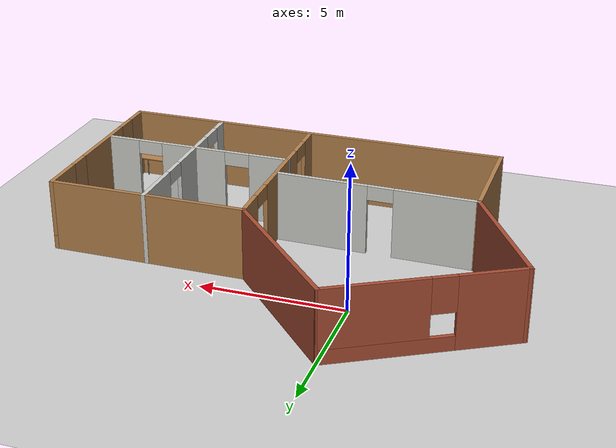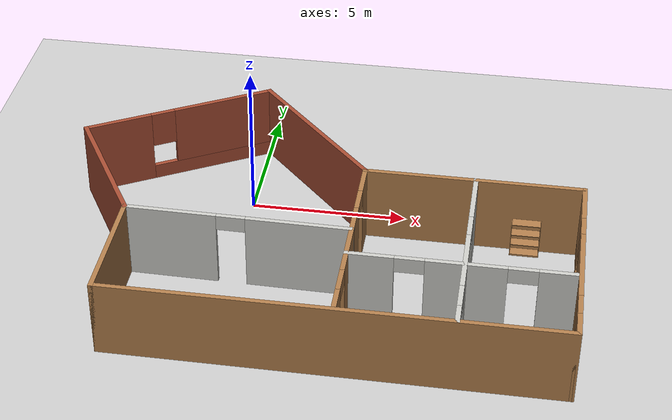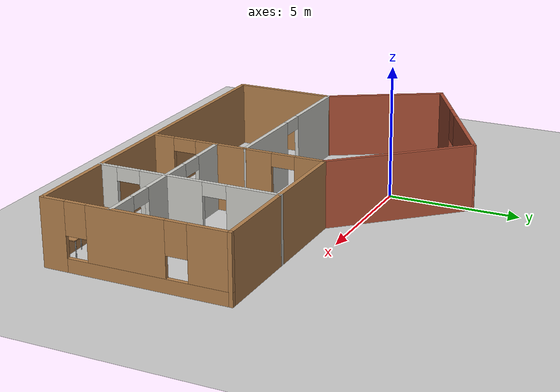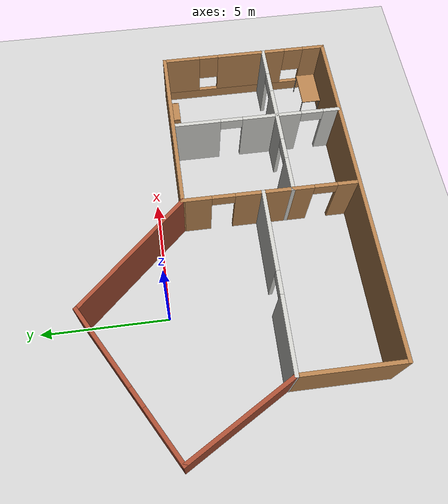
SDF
<sdf version="1.6">
 <world name="default">
  <light name="sun" type="directional">
   <pose>0 0 10 0 -0 0</pose>
   <diffuse>0.8 0.8 0.8 1</diffuse>
   <specular>0.2 0.2 0.2 1</specular>
   <attenuation>
    <range>1000</range>
    <constant>0.9</constant>
    <linear>0.01</linear>
    <quadratic>0.001</quadratic>
   </attenuation>
   <direction>-0.5 0.1 -0.9</direction>
  </light>
  <model name="ground_plane">
   <static>1</static>
   <link name="link">
    <collision name="collision">
     <geometry><plane><normal>0 0 1</normal><size>100 100</size></plane></geometry>
     <surface><friction><ode><mu>100</mu><mu2>50</mu2></ode></friction></surface>
    </collision>
    <visual name="visual">
     <cast_shadows>0</cast_shadows>
     <geometry><plane><normal>0 0 1</normal><size>100 100</size></plane></geometry>
     <material>
      <script><uri>file://media/materials/scripts/gazebo.material</uri><name>Gazebo/Grey</name></script>
     </material>
    </visual>
   </link>
  </model>
  <gravity>0 0 -9.8</gravity>
  <magnetic_field>6e-06 2.3e-05 -4.2e-05</magnetic_field>
  <atmosphere type="adiabatic"/>
  <physics name="default_physics" default="0" type="ode">
   <max_step_size>0.001</max_step_size>
   <real_time_factor>1</real_time_factor>
   <real_time_update_rate>1000</real_time_update_rate>
  </physics>
  <scene><ambient>0.4 0.4 0.4 1</ambient><background>0.7 0.7 0.7 1</background><shadows>1</shadows></scene>
  <spherical_coordinates>
   <surface_model>EARTH_WGS84</surface_model>
   <latitude_deg>0</latitude_deg>
   <longitude_deg>0</longitude_deg>
   <elevation>0</elevation>
   <heading_deg>0</heading_deg>
  </spherical_coordinates>
  <model name="Project4">
   <pose>2.56127 -2.31016 0 0 -0 0</pose>
   <link name="Wall_0">
    <collision name="Wall_0_Collision">
     <geometry><box><size>4 0.15 2.5</size></box></geometry>
     <pose>0 0 1.25 0 -0 0</pose>
    </collision>
    <visual name="Wall_0_Visual">
     <pose>0 0 1.25 0 -0 0</pose>
     <geometry><box><size>4 0.15 2.5</size></box></geometry>
     <material>
      <script><uri>file://media/materials/scripts/gazebo.material</uri><name>Gazebo/Wood</name></script>
      <ambient>1 1 1 1</ambient>
     </material>
     <meta><layer>0</layer></meta>
    </visual>
    <pose>-5.76127 -3.59484 0 0 0 -1.5708</pose>
   </link>
   <link name="Wall_1">
    <collision name="Wall_1_Collision">
     <geometry><box><size>14 0.15 2.5</size></box></geometry>
     <pose>0 0 1.25 0 -0 0</pose>
    </collision>
    <visual name="Wall_1_Visual">
     <pose>0 0 1.25 0 -0 0</pose>
     <geometry><box><size>14 0.15 2.5</size></box></geometry>
     <material>
      <script><uri>file://media/materials/scripts/gazebo.material</uri><name>Gazebo/Wood</name></script>
      <ambient>1 1 1 1</ambient>
     </material>
     <meta><layer>0</layer></meta>
    </visual>
    <pose>1.16373 -5.51984 0 0 -0 0</pose>
   </link>
   <link name="Wall_11">
    <pose>1.23873 -3.56984 0 0 0 -1.5708</pose>
    <visual name="Wall_11_Visual_0">
     <pose>-0.84773 0 1.25 0 -0 0</pose>
     <geometry><box><size>2.05454 0.15 2.5</size></box></geometry>
     <material>
      <script><uri>file://media/materials/scripts/gazebo.material</uri><name>Gazebo/Wood</name></script>
      <ambient>1 1 1 1</ambient>
     </material>
     <meta><layer>0</layer></meta>
    </visual>
    <collision name="Wall_11_Collision_0">
     <geometry><box><size>2.05454 0.15 2.5</size></box></geometry>
     <pose>-0.84773 0 1.25 0 -0 0</pose>
    </collision>
    <visual name="Wall_11_Visual_1">
     <pose>1.47727 0 1.25 0 -0 0</pose>
     <geometry><box><size>0.795459 0.15 2.5</size></box></geometry>
     <material>
      <script><uri>file://media/materials/scripts/gazebo.material</uri><name>Gazebo/Wood</name></script>
      <ambient>1 1 1 1</ambient>
     </material>
     <meta><layer>0</layer></meta>
    </visual>
    <collision name="Wall_11_Collision_1">
     <geometry><box><size>0.795459 0.15 2.5</size></box></geometry>
     <pose>1.47727 0 1.25 0 -0 0</pose>
    </collision>
    <visual name="Wall_11_Visual_2">
     <pose>0.629541 0 2.25 0 -0 0</pose>
     <geometry><box><size>0.9 0.15 0.5</size></box></geometry>
     <material>
      <script><uri>file://media/materials/scripts/gazebo.material</uri><name>Gazebo/Wood</name></script>
      <ambient>1 1 1 1</ambient>
     </material>
     <meta><layer>0</layer></meta>
    </visual>
    <collision name="Wall_11_Collision_2">
     <geometry><box><size>0.9 0.15 0.5</size></box></geometry>
     <pose>0.629541 0 2.25 0 -0 0</pose>
    </collision>
   </link>
   <link name="Wall_13">
    <pose>4.66348 -2.92257 0 0 -0 0</pose>
    <visual name="Wall_13_Visual_0">
     <pose>-2.75649 0 1.25 0 -0 0</pose>
     <geometry><box><size>1.48701 0.15 2.5</size></box></geometry>
     <material>
      <script><uri>file://media/materials/scripts/gazebo.material</uri><name>Gazebo/CeilingTiled</name></script>
      <ambient>1 1 1 1</ambient>
     </material>
     <meta><layer>0</layer></meta>
    </visual>
    <collision name="Wall_13_Collision_0">
     <geometry><box><size>1.48701 0.15 2.5</size></box></geometry>
     <pose>-2.75649 0 1.25 0 -0 0</pose>
    </collision>
    <visual name="Wall_13_Visual_1">
     <pose>0.099527 0 1.25 0 -0 0</pose>
     <geometry><box><size>2.42503 0.15 2.5</size></box></geometry>
     <material>
      <script><uri>file://media/materials/scripts/gazebo.material</uri><name>Gazebo/CeilingTiled</name></script>
      <ambient>1 1 1 1</ambient>
     </material>
     <meta><layer>0</layer></meta>
    </visual>
    <collision name="Wall_13_Collision_1">
     <geometry><box><size>2.42503 0.15 2.5</size></box></geometry>
     <pose>0.099527 0 1.25 0 -0 0</pose>
    </collision>
    <visual name="Wall_13_Visual_2">
     <pose>2.85602 0 1.25 0 -0 0</pose>
     <geometry><box><size>1.28796 0.15 2.5</size></box></geometry>
     <material>
      <script><uri>file://media/materials/scripts/gazebo.material</uri><name>Gazebo/CeilingTiled</name></script>
      <ambient>1 1 1 1</ambient>
     </material>
     <meta><layer>0</layer></meta>
    </visual>
    <collision name="Wall_13_Collision_2">
     <geometry><box><size>1.28796 0.15 2.5</size></box></geometry>
     <pose>2.85602 0 1.25 0 -0 0</pose>
    </collision>
    <visual name="Wall_13_Visual_3">
     <pose>-1.56299 0 2.25 0 -0 0</pose>
     <geometry><box><size>0.9 0.15 0.5</size></box></geometry>
     <material>
      <script><uri>file://media/materials/scripts/gazebo.material</uri><name>Gazebo/CeilingTiled</name></script>
      <ambient>1 1 1 1</ambient>
     </material>
     <meta><layer>0</layer></meta>
    </visual>
    <collision name="Wall_13_Collision_3">
     <geometry><box><size>0.9 0.15 0.5</size></box></geometry>
     <pose>-1.56299 0 2.25 0 -0 0</pose>
    </collision>
    <visual name="Wall_13_Visual_4">
     <pose>1.76204 0 2.25 0 -0 0</pose>
     <geometry><box><size>0.9 0.15 0.5</size></box></geometry>
     <material>
      <script><uri>file://media/materials/scripts/gazebo.material</uri><name>Gazebo/CeilingTiled</name></script>
      <ambient>1 1 1 1</ambient>
     </material>
     <meta><layer>0</layer></meta>
    </visual>
    <collision name="Wall_13_Collision_4">
     <geometry><box><size>0.9 0.15 0.5</size></box></geometry>
     <pose>1.76204 0 2.25 0 -0 0</pose>
    </collision>
   </link>
   <link name="Wall_15">
    <pose>4.7231 -2.09154 0 0 0 -1.5708</pose>
    <visual name="Wall_15_Visual_0">
     <pose>-2.49049 0 1.25 0 -0 0</pose>
     <geometry><box><size>2.01902 0.15 2.5</size></box></geometry>
     <material>
      <script><uri>file://media/materials/scripts/gazebo.material</uri><name>Gazebo/CeilingTiled</name></script>
      <ambient>1 1 1 1</ambient>
     </material>
     <meta><layer>0</layer></meta>
    </visual>
    <collision name="Wall_15_Collision_0">
     <geometry><box><size>2.01902 0.15 2.5</size></box></geometry>
     <pose>-2.49049 0 1.25 0 -0 0</pose>
    </collision>
    <visual name="Wall_15_Visual_1">
     <pose>0.63153 0 1.25 0 -0 0</pose>
     <geometry><box><size>2.42503 0.15 2.5</size></box></geometry>
     <material>
      <script><uri>file://media/materials/scripts/gazebo.material</uri><name>Gazebo/CeilingTiled</name></script>
      <ambient>1 1 1 1</ambient>
     </material>
     <meta><layer>0</layer></meta>
    </visual>
    <collision name="Wall_15_Collision_1">
     <geometry><box><size>2.42503 0.15 2.5</size></box></geometry>
     <pose>0.63153 0 1.25 0 -0 0</pose>
    </collision>
    <visual name="Wall_15_Visual_2">
     <pose>3.12202 0 1.25 0 -0 0</pose>
     <geometry><box><size>0.755957 0.15 2.5</size></box></geometry>
     <material>
      <script><uri>file://media/materials/scripts/gazebo.material</uri><name>Gazebo/CeilingTiled</name></script>
      <ambient>1 1 1 1</ambient>
     </material>
     <meta><layer>0</layer></meta>
    </visual>
    <collision name="Wall_15_Collision_2">
     <geometry><box><size>0.755957 0.15 2.5</size></box></geometry>
     <pose>3.12202 0 1.25 0 -0 0</pose>
    </collision>
    <visual name="Wall_15_Visual_3">
     <pose>-1.03098 0 2.25 0 -0 0</pose>
     <geometry><box><size>0.9 0.15 0.5</size></box></geometry>
     <material>
      <script><uri>file://media/materials/scripts/gazebo.material</uri><name>Gazebo/CeilingTiled</name></script>
      <ambient>1 1 1 1</ambient>
     </material>
     <meta><layer>0</layer></meta>
    </visual>
    <collision name="Wall_15_Collision_3">
     <geometry><box><size>0.9 0.15 0.5</size></box></geometry>
     <pose>-1.03098 0 2.25 0 -0 0</pose>
    </collision>
    <visual name="Wall_15_Visual_4">
     <pose>2.29404 0 2.25 0 -0 0</pose>
     <geometry><box><size>0.9 0.15 0.5</size></box></geometry>
     <material>
      <script><uri>file://media/materials/scripts/gazebo.material</uri><name>Gazebo/CeilingTiled</name></script>
      <ambient>1 1 1 1</ambient>
     </material>
     <meta><layer>0</layer></meta>
    </visual>
    <collision name="Wall_15_Collision_4">
     <geometry><box><size>0.9 0.15 0.5</size></box></geometry>
     <pose>2.29404 0 2.25 0 -0 0</pose>
    </collision>
   </link>
   <link name="Wall_2">
    <pose>8.08873 -2.09484 0 0 -0 1.5708</pose>
    <visual name="Wall_2_Visual_0">
     <pose>-3.02887 0 1.25 0 -0 0</pose>
     <geometry><box><size>0.942258 0.15 2.5</size></box></geometry>
     <material>
      <script><uri>file://media/materials/scripts/gazebo.material</uri><name>Gazebo/Wood</name></script>
      <ambient>1 1 1 1</ambient>
     </material>
     <meta><layer>0</layer></meta>
    </visual>
    <collision name="Wall_2_Collision_0">
     <geometry><box><size>0.942258 0.15 2.5</size></box></geometry>
     <pose>-3.02887 0 1.25 0 -0 0</pose>
    </collision>
    <visual name="Wall_2_Visual_1">
     <pose>0.471129 0 0.25 0 -0 0</pose>
     <geometry><box><size>6.05774 0.15 0.5</size></box></geometry>
     <material>
      <script><uri>file://media/materials/scripts/gazebo.material</uri><name>Gazebo/Wood</name></script>
      <ambient>1 1 1 1</ambient>
     </material>
     <meta><layer>0</layer></meta>
    </visual>
    <collision name="Wall_2_Collision_1">
     <geometry><box><size>6.05774 0.15 0.5</size></box></geometry>
     <pose>0.471129 0 0.25 0 -0 0</pose>
    </collision>
    <visual name="Wall_2_Visual_2">
     <pose>-0.309028 0 1.5 0 -0 0</pose>
     <geometry><box><size>2.89743 0.15 2</size></box></geometry>
     <material>
      <script><uri>file://media/materials/scripts/gazebo.material</uri><name>Gazebo/Wood</name></script>
      <ambient>1 1 1 1</ambient>
     </material>
     <meta><layer>0</layer></meta>
    </visual>
    <collision name="Wall_2_Collision_2">
     <geometry><box><size>2.89743 0.15 2</size></box></geometry>
     <pose>-0.309028 0 1.5 0 -0 0</pose>
    </collision>
    <visual name="Wall_2_Visual_3">
     <pose>2.71984 0 1.5 0 -0 0</pose>
     <geometry><box><size>1.56031 0.15 2</size></box></geometry>
     <material>
      <script><uri>file://media/materials/scripts/gazebo.material</uri><name>Gazebo/Wood</name></script>
      <ambient>1 1 1 1</ambient>
     </material>
     <meta><layer>0</layer></meta>
    </visual>
    <collision name="Wall_2_Collision_3">
     <geometry><box><size>1.56031 0.15 2</size></box></geometry>
     <pose>2.71984 0 1.5 0 -0 0</pose>
    </collision>
    <visual name="Wall_2_Visual_4">
     <pose>-2.15774 0 1.9 0 -0 0</pose>
     <geometry><box><size>0.8 0.15 1.2</size></box></geometry>
     <material>
      <script><uri>file://media/materials/scripts/gazebo.material</uri><name>Gazebo/Wood</name></script>
      <ambient>1 1 1 1</ambient>
     </material>
     <meta><layer>0</layer></meta>
    </visual>
    <collision name="Wall_2_Collision_4">
     <geometry><box><size>0.8 0.15 1.2</size></box></geometry>
     <pose>-2.15774 0 1.9 0 -0 0</pose>
    </collision>
    <visual name="Wall_2_Visual_5">
     <pose>1.53969 0 1.9 0 -0 0</pose>
     <geometry><box><size>0.8 0.15 1.2</size></box></geometry>
     <material>
      <script><uri>file://media/materials/scripts/gazebo.material</uri><name>Gazebo/Wood</name></script>
      <ambient>1 1 1 1</ambient>
     </material>
     <meta><layer>0</layer></meta>
    </visual>
    <collision name="Wall_2_Collision_5">
     <geometry><box><size>0.8 0.15 1.2</size></box></geometry>
     <pose>1.53969 0 1.9 0 -0 0</pose>
    </collision>
   </link>
   <link name="Wall_3">
    <collision name="Wall_3_Collision">
     <geometry><box><size>7 0.15 2.5</size></box></geometry>
     <pose>0 0 1.25 0 -0 0</pose>
    </collision>
    <visual name="Wall_3_Visual">
     <pose>0 0 1.25 0 -0 0</pose>
     <geometry><box><size>7 0.15 2.5</size></box></geometry>
     <material>
      <script><uri>file://media/materials/scripts/gazebo.material</uri><name>Gazebo/Wood</name></script>
      <ambient>1 1 1 1</ambient>
     </material>
     <meta><layer>0</layer></meta>
    </visual>
    <pose>4.66373 1.33016 0 0 -0 3.14159</pose>
   </link>
   <link name="Wall_4">
    <pose>1.23873 -0.219838 0 0 0 -1.5708</pose>
    <visual name="Wall_4_Visual_0">
     <pose>-1.02944 0 1.25 0 -0 0</pose>
     <geometry><box><size>1.19111 0.15 2.5</size></box></geometry>
     <material>
      <script><uri>file://media/materials/scripts/gazebo.material</uri><name>Gazebo/Wood</name></script>
      <ambient>1 1 1 1</ambient>
     </material>
     <meta><layer>0</layer></meta>
    </visual>
    <collision name="Wall_4_Collision_0">
     <geometry><box><size>1.19111 0.15 2.5</size></box></geometry>
     <pose>-1.02944 0 1.25 0 -0 0</pose>
    </collision>
    <visual name="Wall_4_Visual_1">
     <pose>1.04556 0 1.25 0 -0 0</pose>
     <geometry><box><size>1.15889 0.15 2.5</size></box></geometry>
     <material>
      <script><uri>file://media/materials/scripts/gazebo.material</uri><name>Gazebo/Wood</name></script>
      <ambient>1 1 1 1</ambient>
     </material>
     <meta><layer>0</layer></meta>
    </visual>
    <collision name="Wall_4_Collision_1">
     <geometry><box><size>1.15889 0.15 2.5</size></box></geometry>
     <pose>1.04556 0 1.25 0 -0 0</pose>
    </collision>
    <visual name="Wall_4_Visual_2">
     <pose>0.016112 0 2.25 0 -0 0</pose>
     <geometry><box><size>0.9 0.15 0.5</size></box></geometry>
     <material>
      <script><uri>file://media/materials/scripts/gazebo.material</uri><name>Gazebo/Wood</name></script>
      <ambient>1 1 1 1</ambient>
     </material>
     <meta><layer>0</layer></meta>
    </visual>
    <collision name="Wall_4_Collision_2">
     <geometry><box><size>0.9 0.15 0.5</size></box></geometry>
     <pose>0.016112 0 2.25 0 -0 0</pose>
    </collision>
   </link>
   <link name="Wall_5">
    <pose>-2.26127 -1.71984 0 0 -0 3.12731</pose>
    <visual name="Wall_5_Visual_0">
     <pose>-1.9137 0 1.25 0 -0 0</pose>
     <geometry><box><size>3.32331 0.15 2.5</size></box></geometry>
     <material>
      <script><uri>file://media/materials/scripts/gazebo.material</uri><name>Gazebo/CeilingTiled</name></script>
      <ambient>1 1 1 1</ambient>
     </material>
     <meta><layer>0</layer></meta>
    </visual>
    <collision name="Wall_5_Collision_0">
     <geometry><box><size>3.32331 0.15 2.5</size></box></geometry>
     <pose>-1.9137 0 1.25 0 -0 0</pose>
    </collision>
    <visual name="Wall_5_Visual_1">
     <pose>2.11166 0 1.25 0 -0 0</pose>
     <geometry><box><size>2.9274 0.15 2.5</size></box></geometry>
     <material>
      <script><uri>file://media/materials/scripts/gazebo.material</uri><name>Gazebo/CeilingTiled</name></script>
      <ambient>1 1 1 1</ambient>
     </material>
     <meta><layer>0</layer></meta>
    </visual>
    <collision name="Wall_5_Collision_1">
     <geometry><box><size>2.9274 0.15 2.5</size></box></geometry>
     <pose>2.11166 0 1.25 0 -0 0</pose>
    </collision>
    <visual name="Wall_5_Visual_2">
     <pose>0.197955 0 2.25 0 -0 0</pose>
     <geometry><box><size>0.9 0.15 0.5</size></box></geometry>
     <material>
      <script><uri>file://media/materials/scripts/gazebo.material</uri><name>Gazebo/CeilingTiled</name></script>
      <ambient>1 1 1 1</ambient>
     </material>
     <meta><layer>0</layer></meta>
    </visual>
    <collision name="Wall_5_Collision_2">
     <geometry><box><size>0.9 0.15 0.5</size></box></geometry>
     <pose>0.197955 0 2.25 0 -0 0</pose>
    </collision>
   </link>
   <link name="Wall_7">
    <collision name="Wall_7_Collision">
     <geometry><box><size>4.75 0.15 2.5</size></box></geometry>
     <pose>0 0 1.25 0 -0 0</pose>
    </collision>
    <visual name="Wall_7_Visual">
     <pose>0 0 1.25 0 -0 0</pose>
     <geometry><box><size>4.75 0.15 2.5</size></box></geometry>
     <material>
      <script><uri>file://media/materials/scripts/gazebo.material</uri><name>Gazebo/Bricks</name></script>
      <ambient>1 1 1 1</ambient>
     </material>
     <meta><layer>0</layer></meta>
    </visual>
    <pose>-6.91127 0.322021 0 0 -0 2.0944</pose>
   </link>
   <link name="Wall_8">
    <pose>-5.31164 3.90138 0 0 -0 0.523599</pose>
    <visual name="Wall_8_Visual_0">
     <pose>-2.11646 0 1.25 0 -0 0</pose>
     <geometry><box><size>2.26707 0.15 2.5</size></box></geometry>
     <material>
      <script><uri>file://media/materials/scripts/gazebo.material</uri><name>Gazebo/Bricks</name></script>
      <ambient>1 1 1 1</ambient>
     </material>
     <meta><layer>0</layer></meta>
    </visual>
    <collision name="Wall_8_Collision_0">
     <geometry><box><size>2.26707 0.15 2.5</size></box></geometry>
     <pose>-2.11646 0 1.25 0 -0 0</pose>
    </collision>
    <visual name="Wall_8_Visual_1">
     <pose>1.13353 0 0.25 0 -0 0</pose>
     <geometry><box><size>4.23293 0.15 0.5</size></box></geometry>
     <material>
      <script><uri>file://media/materials/scripts/gazebo.material</uri><name>Gazebo/Bricks</name></script>
      <ambient>1 1 1 1</ambient>
     </material>
     <meta><layer>0</layer></meta>
    </visual>
    <collision name="Wall_8_Collision_1">
     <geometry><box><size>4.23293 0.15 0.5</size></box></geometry>
     <pose>1.13353 0 0.25 0 -0 0</pose>
    </collision>
    <visual name="Wall_8_Visual_2">
     <pose>1.53354 0 1.5 0 -0 0</pose>
     <geometry><box><size>3.43293 0.15 2</size></box></geometry>
     <material>
      <script><uri>file://media/materials/scripts/gazebo.material</uri><name>Gazebo/Bricks</name></script>
      <ambient>1 1 1 1</ambient>
     </material>
     <meta><layer>0</layer></meta>
    </visual>
    <collision name="Wall_8_Collision_2">
     <geometry><box><size>3.43293 0.15 2</size></box></geometry>
     <pose>1.53354 0 1.5 0 -0 0</pose>
    </collision>
    <visual name="Wall_8_Visual_3">
     <pose>-0.582929 0 1.9 0 -0 0</pose>
     <geometry><box><size>0.8 0.15 1.2</size></box></geometry>
     <material>
      <script><uri>file://media/materials/scripts/gazebo.material</uri><name>Gazebo/Bricks</name></script>
      <ambient>1 1 1 1</ambient>
     </material>
     <meta><layer>0</layer></meta>
    </visual>
    <collision name="Wall_8_Collision_3">
     <geometry><box><size>0.8 0.15 1.2</size></box></geometry>
     <pose>-0.582929 0 1.9 0 -0 0</pose>
    </collision>
   </link>
   <link name="Wall_9">
    <collision name="Wall_9_Collision">
     <geometry><box><size>5.78387 0.15 2.5</size></box></geometry>
     <pose>0 0 1.25 0 -0 0</pose>
    </collision>
    <visual name="Wall_9_Visual">
     <pose>0 0 1.25 0 -0 0</pose>
     <geometry><box><size>5.78387 0.15 2.5</size></box></geometry>
     <material>
      <script><uri>file://media/materials/scripts/gazebo.material</uri><name>Gazebo/Bricks</name></script>
      <ambient>1 1 1 1</ambient>
     </material>
     <meta><layer>0</layer></meta>
    </visual>
    <pose>-0.661644 3.40952 0 0 0 -0.830343</pose>
   </link>
   <static>1</static>
  </model>
  <model name="bookshelf">
   <static>1</static>
   <link name="link">
    <inertial><mass>1</mass></inertial>
    <collision name="back">
     <pose>0 0.005 0.6 0 -0 0</pose>
     <geometry><box><size>0.9 0.01 1.2</size></box></geometry>
    </collision>
    <visual name="visual1">
     <pose>0 0.005 0.6 0 -0 0</pose>
     <geometry><box><size>0.9 0.01 1.2</size></box></geometry>
     <material>
      <script><uri>file://media/materials/scripts/gazebo.material</uri><name>Gazebo/Wood</name></script>
     </material>
    </visual>
    <collision name="left_side">
     <pose>0.45 -0.195 0.6 0 -0 0</pose>
     <geometry><box><size>0.02 0.4 1.2</size></box></geometry>
    </collision>
    <visual name="visual2">
     <pose>0.45 -0.195 0.6 0 -0 0</pose>
     <geometry><box><size>0.02 0.4 1.2</size></box></geometry>
     <material>
      <script><uri>file://media/materials/scripts/gazebo.material</uri><name>Gazebo/Wood</name></script>
     </material>
    </visual>
    <collision name="right_side">
     <pose>-0.45 -0.195 0.6 0 -0 0</pose>
     <geometry><box><size>0.02 0.4 1.2</size></box></geometry>
    </collision>
    <visual name="visual3">
     <pose>-0.45 -0.195 0.6 0 -0 0</pose>
     <geometry><box><size>0.02 0.4 1.2</size></box></geometry>
     <material>
      <script><uri>file://media/materials/scripts/gazebo.material</uri><name>Gazebo/Wood</name></script>
     </material>
    </visual>
    <collision name="bottom">
     <pose>0 -0.195 0.03 0 -0 0</pose>
     <geometry><box><size>0.88 0.4 0.06</size></box></geometry>
    </collision>
    <visual name="visual4">
     <pose>0 -0.195 0.03 0 -0 0</pose>
     <geometry><box><size>0.88 0.4 0.06</size></box></geometry>
     <material>
      <script><uri>file://media/materials/scripts/gazebo.material</uri><name>Gazebo/Wood</name></script>
     </material>
    </visual>
    <collision name="top">
     <pose>0 -0.195 1.19 0 -0 0</pose>
     <geometry><box><size>0.88 0.4 0.02</size></box></geometry>
    </collision>
    <visual name="visual5">
     <pose>0 -0.195 1.19 0 -0 0</pose>
     <geometry><box><size>0.88 0.4 0.02</size></box></geometry>
     <material>
      <script><uri>file://media/materials/scripts/gazebo.material</uri><name>Gazebo/Wood</name></script>
     </material>
    </visual>
    <collision name="low_shelf">
     <pose>0 -0.195 0.43 0 -0 0</pose>
     <geometry><box><size>0.88 0.4 0.02</size></box></geometry>
    </collision>
    <visual name="visual6">
     <pose>0 -0.195 0.43 0 -0 0</pose>
     <geometry><box><size>0.88 0.4 0.02</size></box></geometry>
     <material>
      <script><uri>file://media/materials/scripts/gazebo.material</uri><name>Gazebo/Wood</name></script>
     </material>
    </visual>
    <collision name="high_shelf">
     <pose>0 -0.195 0.8 0 -0 0</pose>
     <geometry><box><size>0.88 0.4 0.02</size></box></geometry>
    </collision>
    <visual name="visual7">
     <pose>0 -0.195 0.8 0 -0 0</pose>
     <geometry><box><size>0.88 0.4 0.02</size></box></geometry>
     <material>
      <script><uri>file://media/materials/scripts/gazebo.material</uri><name>Gazebo/Wood</name></script>
     </material>
    </visual>
   </link>
   <pose>8.95377 -0.997236 0 0 -0 0</pose>
  </model>
  <model name="table">
   <static>1</static>
   <link name="link">
    <collision name="surface">
     <pose>0 0 1 0 -0 0</pose>
     <geometry><box><size>1.5 0.8 0.03</size></box></geometry>
     <surface><friction><ode><mu>0.6</mu><mu2>0.6</mu2></ode></friction></surface>
    </collision>
    <visual name="visual1">
     <pose>0 0 1 0 -0 0</pose>
     <geometry><box><size>1.5 0.8 0.03</size></box></geometry>
     <material>
      <script><uri>file://media/materials/scripts/gazebo.material</uri><name>Gazebo/Wood</name></script>
     </material>
    </visual>
    <collision name="front_left_leg">
     <pose>0.68 0.38 0.5 0 -0 0</pose>
     <geometry><cylinder><radius>0.02</radius><length>1</length></cylinder></geometry>
    </collision>
    <visual name="front_left_leg">
     <pose>0.68 0.38 0.5 0 -0 0</pose>
     <geometry><cylinder><radius>0.02</radius><length>1</length></cylinder></geometry>
     <material>
      <script><uri>file://media/materials/scripts/gazebo.material</uri><name>Gazebo/Grey</name></script>
     </material>
    </visual>
    <collision name="front_right_leg">
     <pose>0.68 -0.38 0.5 0 -0 0</pose>
     <geometry><cylinder><radius>0.02</radius><length>1</length></cylinder></geometry>
    </collision>
    <visual name="front_right_leg">
     <pose>0.68 -0.38 0.5 0 -0 0</pose>
     <geometry><cylinder><radius>0.02</radius><length>1</length></cylinder></geometry>
     <material>
      <script><uri>file://media/materials/scripts/gazebo.material</uri><name>Gazebo/Grey</name></script>
     </material>
    </visual>
    <collision name="back_right_leg">
     <pose>-0.68 -0.38 0.5 0 -0 0</pose>
     <geometry><cylinder><radius>0.02</radius><length>1</length></cylinder></geometry>
    </collision>
    <visual name="back_right_leg">
     <pose>-0.68 -0.38 0.5 0 -0 0</pose>
     <geometry><cylinder><radius>0.02</radius><length>1</length></cylinder></geometry>
     <material>
      <script><uri>file://media/materials/scripts/gazebo.material</uri><name>Gazebo/Grey</name></script>
     </material>
    </visual>
    <collision name="back_left_leg">
     <pose>-0.68 0.38 0.5 0 -0 0</pose>
     <geometry><cylinder><radius>0.02</radius><length>1</length></cylinder></geometry>
    </collision>
    <visual name="back_left_leg">
     <pose>-0.68 0.38 0.5 0 -0 0</pose>
     <geometry><cylinder><radius>0.02</radius><length>1</length></cylinder></geometry>
     <material>
      <script><uri>file://media/materials/scripts/gazebo.material</uri><name>Gazebo/Grey</name></script>
     </material>
    </visual>
   </link>
   <pose>9.66426 -7.25824 0 0 -0 0</pose>
  </model>
 </world>
</sdf>
